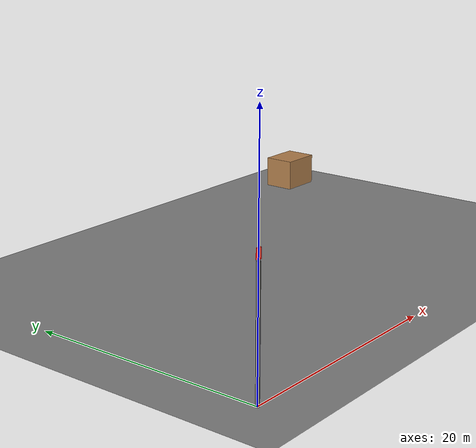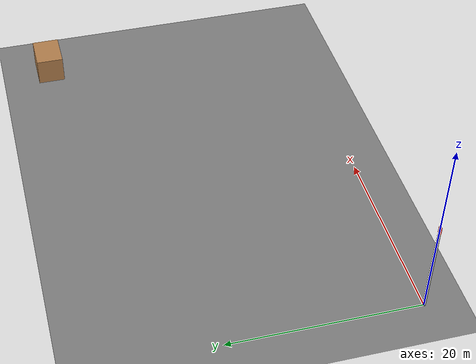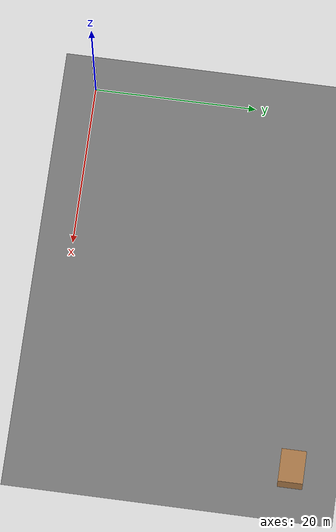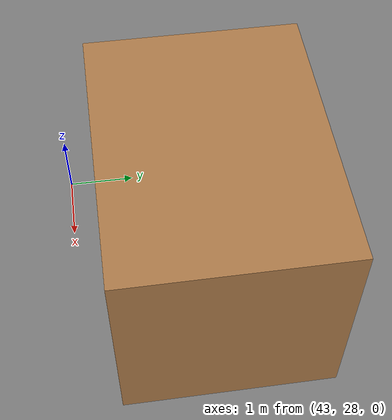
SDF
<?xml version="1.0" ?>
<!-- Scenario 1: Open Field / Rural Environment
     Minimal obstructions - ideal baseline for FSPL validation
     Expected: All models should converge toward FSPL behavior -->
<sdf version="1.8">
  <world name="scenario_open_field">

    <physics name="1ms" type="ignored">
      <max_step_size>0.001</max_step_size>
      <real_time_factor>1.0</real_time_factor>
    </physics>

    <plugin filename="ignition-gazebo-physics-system"
            name="ignition::gazebo::systems::Physics"/>
    <plugin filename="ignition-gazebo-scene-broadcaster-system"
            name="ignition::gazebo::systems::SceneBroadcaster"/>
    <plugin filename="ignition-gazebo-user-commands-system"
            name="ignition::gazebo::systems::UserCommands"/>

    <plugin filename="libHeatmapPlugin.so"
            name="heatmap_plugin::HeatmapPlugin">
      <grid_w>128</grid_w>
      <grid_h>128</grid_h>
      <cell_size>1.0</cell_size>
      <frequency_hz>3500000000</frequency_hz>
      <tx_dbm>30.0</tx_dbm>
      <tx_height>10.0</tx_height>
      <rx_height>1.5</rx_height>
      <tx_gain_dbi>8.0</tx_gain_dbi>
      <rx_gain_dbi>0.0</rx_gain_dbi>
      <gnb_pose>0 0 10 0 0 0</gnb_pose>
      <propagation_model>3gpp_umi</propagation_model>
      <wall_loss_db>15.0</wall_loss_db>
      <reflection_coeff>0.7</reflection_coeff>
      <include_shadowing>false</include_shadowing>
      <max_reflections>2</max_reflections>
    </plugin>

    <light type="directional" name="sun">
      <cast_shadows>true</cast_shadows>
      <pose>0 0 10 0 0 0</pose>
      <diffuse>0.8 0.8 0.8 1</diffuse>
      <specular>0.2 0.2 0.2 1</specular>
      <direction>-0.5 0.1 -0.9</direction>
    </light>

    <!-- Large ground plane - Grey -->
    <model name="ground_plane">
      <static>true</static>
      <link name="link">
        <collision name="collision">
          <geometry>
            <plane><normal>0 0 1</normal><size>300 300</size></plane>
          </geometry>
        </collision>
        <visual name="visual">
          <geometry>
            <plane><normal>0 0 1</normal><size>300 300</size></plane>
          </geometry>
          <material>
            <ambient>0.5 0.5 0.5 1</ambient>
            <diffuse>0.5 0.5 0.5 1</diffuse>
            <specular>0.1 0.1 0.1 1</specular>
            <emissive>0 0 0 1</emissive>
          </material>
        </visual>
      </link>
    </model>

    <!-- gNB Tower -->
    <model name="gnb_tower">
      <static>true</static>
      <pose>0 0 5 0 0 0</pose>
      <link name="tower_link">
        <visual name="pole">
          <geometry><cylinder><radius>0.15</radius><length>10</length></cylinder></geometry>
          <material>
            <ambient>0.3 0.3 0.3 1</ambient>
            <diffuse>0.3 0.3 0.3 1</diffuse>
            <specular>0.1 0.1 0.1 1</specular>
            <emissive>0 0 0 1</emissive>
          </material>
        </visual>
        <visual name="antenna">
          <pose>0 0 5.5 0 0 0</pose>
          <geometry><box><size>0.4 0.15 0.8</size></box></geometry>
          <material>
            <ambient>0.9 0.1 0.1 1</ambient>
            <diffuse>0.9 0.1 0.1 1</diffuse>
            <specular>0.2 0.2 0.2 1</specular>
            <emissive>0 0 0 1</emissive>
          </material>
        </visual>
      </link>
    </model>

    <!-- Single distant small structure - Warm brown -->
    <model name="distant_shed">
      <static>true</static>
      <pose>45 30 1.5 0 0 0</pose>
      <link name="link">
        <collision name="collision">
          <geometry><box><size>4 3 3</size></box></geometry>
        </collision>
        <visual name="visual">
          <geometry><box><size>4 3 3</size></box></geometry>
          <material>
            <ambient>0.7 0.5 0.3 1</ambient>
            <diffuse>0.7 0.5 0.3 1</diffuse>
            <specular>0.1 0.1 0.1 1</specular>
            <emissive>0 0 0 1</emissive>
          </material>
        </visual>
      </link>
    </model>

  </world>
</sdf>
